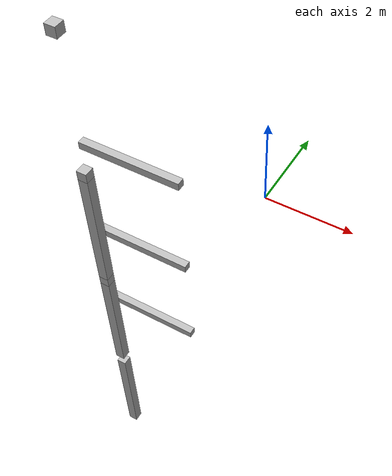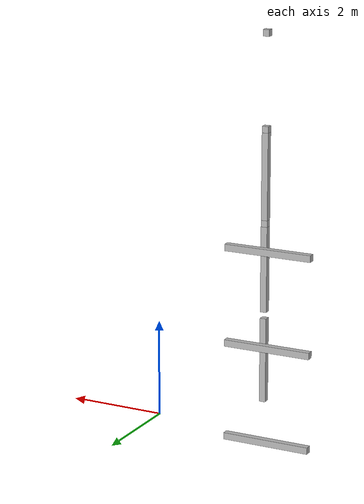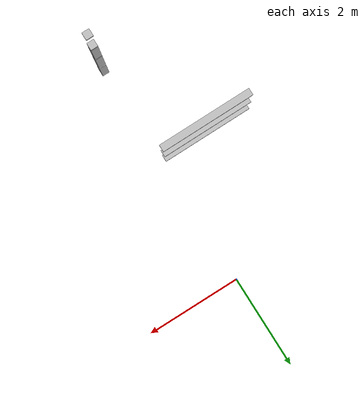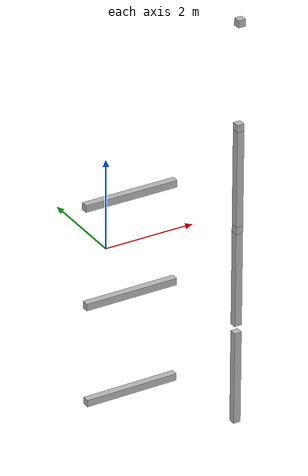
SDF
<sdf version="1.7">
 <world name="default">
  <model name="orthogonal_747_2.000.15_TS">
   <static>1</static>
   <link name="x_link_0_1_2">
    <inertial>
     <mass>1</mass>
     <inertia>
      <ixx>0.166667</ixx>
      <ixy>0</ixy>
      <ixz>0</ixz>
      <iyy>0.166667</iyy>
      <iyz>0</iyz>
      <izz>0.166667</izz>
     </inertia>
    </inertial>
    <pose>5.375 2.15 1.075 0 -0 0</pose>
    <visual name="visual_0">
     <laser_retro>204</laser_retro>
     <geometry><box><size>2 1e-06 0.15</size></box></geometry>
     <material>
      <script><name>Gazebo/Grey</name><uri>file://media/materials/scripts/gazebo.material</uri></script>
      <shader type="pixel"><normal_map>__default__</normal_map></shader>
      <ambient>0.678 0.498 0.659 1</ambient>
      <diffuse>0.7 0.7 0.7 1</diffuse>
      <specular>0.01 0.01 0.01 1</specular>
      <emissive>0 0 0 1</emissive>
     </material>
     <pose>0 -0.075 0 0 -0 0</pose>
     <transparency>1</transparency>
    </visual>
    <visual name="visual_1">
     <laser_retro>205</laser_retro>
     <geometry><box><size>2 1e-06 0.15</size></box></geometry>
     <material>
      <script><name>Gazebo/Grey</name><uri>file://media/materials/scripts/gazebo.material</uri></script>
      <shader type="pixel"><normal_map>__default__</normal_map></shader>
      <ambient>0.447 0.624 0.812 1</ambient>
      <diffuse>0.7 0.7 0.7 1</diffuse>
      <specular>0.01 0.01 0.01 1</specular>
      <emissive>0 0 0 1</emissive>
     </material>
     <pose>0 0.075 0 0 -0 0</pose>
     <transparency>1</transparency>
    </visual>
    <visual name="visual_2">
     <laser_retro>206</laser_retro>
     <geometry><box><size>2 0.15 1e-06</size></box></geometry>
     <material>
      <script><name>Gazebo/Grey</name><uri>file://media/materials/scripts/gazebo.material</uri></script>
      <shader type="pixel"><normal_map>__default__</normal_map></shader>
      <ambient>0.988 0.686 0.243 1</ambient>
      <diffuse>0.7 0.7 0.7 1</diffuse>
      <specular>0.01 0.01 0.01 1</specular>
      <emissive>0 0 0 1</emissive>
     </material>
     <pose>0 0 -0.075 0 -0 0</pose>
     <transparency>1</transparency>
    </visual>
    <visual name="visual_3">
     <laser_retro>207</laser_retro>
     <geometry><box><size>1e-06 0.15 0.15</size></box></geometry>
     <material>
      <script><name>Gazebo/Grey</name><uri>file://media/materials/scripts/gazebo.material</uri></script>
      <shader type="pixel"><normal_map>__default__</normal_map></shader>
      <ambient>0.988 0.914 0.31 1</ambient>
      <diffuse>0.7 0.7 0.7 1</diffuse>
      <specular>0.01 0.01 0.01 1</specular>
      <emissive>0 0 0 1</emissive>
     </material>
     <pose>1 0 0 0 -0 0</pose>
     <transparency>1</transparency>
    </visual>
    <visual name="visual_4">
     <laser_retro>208</laser_retro>
     <geometry><box><size>2 0.15 1e-06</size></box></geometry>
     <material>
      <script><name>Gazebo/Grey</name><uri>file://media/materials/scripts/gazebo.material</uri></script>
      <shader type="pixel"><normal_map>__default__</normal_map></shader>
      <ambient>0.937 0.161 0.161 1</ambient>
      <diffuse>0.7 0.7 0.7 1</diffuse>
      <specular>0.01 0.01 0.01 1</specular>
      <emissive>0 0 0 1</emissive>
     </material>
     <pose>0 0 0.075 0 -0 0</pose>
     <transparency>1</transparency>
    </visual>
    <visual name="visual_5">
     <laser_retro>209</laser_retro>
     <geometry><box><size>1e-06 0.15 0.15</size></box></geometry>
     <material>
      <script><name>Gazebo/Grey</name><uri>file://media/materials/scripts/gazebo.material</uri></script>
      <shader type="pixel"><normal_map>__default__</normal_map></shader>
      <ambient>0.541 0.886 0.204 1</ambient>
      <diffuse>0.7 0.7 0.7 1</diffuse>
      <specular>0.01 0.01 0.01 1</specular>
      <emissive>0 0 0 1</emissive>
     </material>
     <pose>-1 0 0 0 -0 0</pose>
     <transparency>1</transparency>
    </visual>
    <visual name="visual_texture">
     <geometry><box><size>1.9998 0.149985 0.149985</size></box></geometry>
     <material>
      <script>
       <uri>model://BASE_MODELS/simple_block_v2_textured/materials/scripts</uri>
       <uri>model://BASE_MODELS/simple_block_v2_textured/materials/textures</uri>
       <name>metal</name>
      </script>
     </material>
     <laser_retro>210</laser_retro>
    </visual>
    <collision name="collision">
     <geometry><box><size>2 0.15 0.15</size></box></geometry>
     <surface>
      <friction>
       <ode><mu>1</mu><mu2>1</mu2><fdir1>0 0 0</fdir1><slip1>0</slip1><slip2>0</slip2></ode>
       <torsional>
        <coefficient>1</coefficient>
        <patch_radius>0</patch_radius>
        <surface_radius>0</surface_radius>
        <use_patch_radius>1</use_patch_radius>
        <ode><slip>0</slip></ode>
       </torsional>
      </friction>
      <bounce><restitution_coefficient>0</restitution_coefficient><threshold>1e+06</threshold></bounce>
      <contact>
       <collide_without_contact>0</collide_without_contact>
       <collide_without_contact_bitmask>1</collide_without_contact_bitmask>
       <collide_bitmask>1</collide_bitmask>
       <ode>
        <soft_cfm>0</soft_cfm>
        <soft_erp>0.2</soft_erp>
        <kp>1e+13</kp>
        <kd>1</kd>
        <max_vel>0.01</max_vel>
        <min_depth>0</min_depth>
       </ode>
       <bullet>
        <split_impulse>1</split_impulse>
        <split_impulse_penetration_threshold>-0.01</split_impulse_penetration_threshold>
        <soft_cfm>0</soft_cfm>
        <soft_erp>0.2</soft_erp>
        <kp>1e+13</kp>
        <kd>1</kd>
       </bullet>
      </contact>
     </surface>
    </collision>
   </link>
   <link name="z_link_1_0_3">
    <inertial>
     <mass>1</mass>
     <inertia>
      <ixx>0.166667</ixx>
      <ixy>0</ixy>
      <ixz>0</ixz>
      <iyy>0.166667</iyy>
      <iyz>0</iyz>
      <izz>0.166667</izz>
     </inertia>
    </inertial>
    <pose>6.45 0 2.15 0 -0 0</pose>
    <visual name="visual_0">
     <laser_retro>855</laser_retro>
     <geometry><box><size>0.15 1e-06 2</size></box></geometry>
     <material>
      <script><name>Gazebo/Grey</name><uri>file://media/materials/scripts/gazebo.material</uri></script>
      <shader type="pixel"><normal_map>__default__</normal_map></shader>
      <ambient>0.678 0.498 0.659 1</ambient>
      <diffuse>0.7 0.7 0.7 1</diffuse>
      <specular>0.01 0.01 0.01 1</specular>
      <emissive>0 0 0 1</emissive>
     </material>
     <pose>0 -0.075 0 0 -0 0</pose>
     <transparency>1</transparency>
    </visual>
    <visual name="visual_1">
     <laser_retro>856</laser_retro>
     <geometry><box><size>0.15 1e-06 2</size></box></geometry>
     <material>
      <script><name>Gazebo/Grey</name><uri>file://media/materials/scripts/gazebo.material</uri></script>
      <shader type="pixel"><normal_map>__default__</normal_map></shader>
      <ambient>0.447 0.624 0.812 1</ambient>
      <diffuse>0.7 0.7 0.7 1</diffuse>
      <specular>0.01 0.01 0.01 1</specular>
      <emissive>0 0 0 1</emissive>
     </material>
     <pose>0 0.075 0 0 -0 0</pose>
     <transparency>1</transparency>
    </visual>
    <visual name="visual_2">
     <laser_retro>857</laser_retro>
     <geometry><box><size>0.15 0.15 1e-06</size></box></geometry>
     <material>
      <script><name>Gazebo/Grey</name><uri>file://media/materials/scripts/gazebo.material</uri></script>
      <shader type="pixel"><normal_map>__default__</normal_map></shader>
      <ambient>0.988 0.686 0.243 1</ambient>
      <diffuse>0.7 0.7 0.7 1</diffuse>
      <specular>0.01 0.01 0.01 1</specular>
      <emissive>0 0 0 1</emissive>
     </material>
     <pose>0 0 -1 0 -0 0</pose>
     <transparency>1</transparency>
    </visual>
    <visual name="visual_3">
     <laser_retro>858</laser_retro>
     <geometry><box><size>1e-06 0.15 2</size></box></geometry>
     <material>
      <script><name>Gazebo/Grey</name><uri>file://media/materials/scripts/gazebo.material</uri></script>
      <shader type="pixel"><normal_map>__default__</normal_map></shader>
      <ambient>0.988 0.914 0.31 1</ambient>
      <diffuse>0.7 0.7 0.7 1</diffuse>
      <specular>0.01 0.01 0.01 1</specular>
      <emissive>0 0 0 1</emissive>
     </material>
     <pose>0.075 0 0 0 -0 0</pose>
     <transparency>1</transparency>
    </visual>
    <visual name="visual_4">
     <laser_retro>859</laser_retro>
     <geometry><box><size>0.15 0.15 1e-06</size></box></geometry>
     <material>
      <script><name>Gazebo/Grey</name><uri>file://media/materials/scripts/gazebo.material</uri></script>
      <shader type="pixel"><normal_map>__default__</normal_map></shader>
      <ambient>0.937 0.161 0.161 1</ambient>
      <diffuse>0.7 0.7 0.7 1</diffuse>
      <specular>0.01 0.01 0.01 1</specular>
      <emissive>0 0 0 1</emissive>
     </material>
     <pose>0 0 1 0 -0 0</pose>
     <transparency>1</transparency>
    </visual>
    <visual name="visual_5">
     <laser_retro>860</laser_retro>
     <geometry><box><size>1e-06 0.15 2</size></box></geometry>
     <material>
      <script><name>Gazebo/Grey</name><uri>file://media/materials/scripts/gazebo.material</uri></script>
      <shader type="pixel"><normal_map>__default__</normal_map></shader>
      <ambient>0.541 0.886 0.204 1</ambient>
      <diffuse>0.7 0.7 0.7 1</diffuse>
      <specular>0.01 0.01 0.01 1</specular>
      <emissive>0 0 0 1</emissive>
     </material>
     <pose>-0.075 0 0 0 -0 0</pose>
     <transparency>1</transparency>
    </visual>
    <visual name="visual_texture">
     <geometry><box><size>0.149985 0.149985 1.9998</size></box></geometry>
     <material>
      <script>
       <uri>model://BASE_MODELS/simple_block_v2_textured/materials/scripts</uri>
       <uri>model://BASE_MODELS/simple_block_v2_textured/materials/textures</uri>
       <name>metal</name>
      </script>
     </material>
     <laser_retro>861</laser_retro>
    </visual>
    <collision name="collision">
     <geometry><box><size>0.15 0.15 2</size></box></geometry>
     <surface>
      <friction>
       <ode><mu>1</mu><mu2>1</mu2><fdir1>0 0 0</fdir1><slip1>0</slip1><slip2>0</slip2></ode>
       <torsional>
        <coefficient>1</coefficient>
        <patch_radius>0</patch_radius>
        <surface_radius>0</surface_radius>
        <use_patch_radius>1</use_patch_radius>
        <ode><slip>0</slip></ode>
       </torsional>
      </friction>
      <bounce><restitution_coefficient>0</restitution_coefficient><threshold>1e+06</threshold></bounce>
      <contact>
       <collide_without_contact>0</collide_without_contact>
       <collide_without_contact_bitmask>1</collide_without_contact_bitmask>
       <collide_bitmask>1</collide_bitmask>
       <ode>
        <soft_cfm>0</soft_cfm>
        <soft_erp>0.2</soft_erp>
        <kp>1e+13</kp>
        <kd>1</kd>
        <max_vel>0.01</max_vel>
        <min_depth>0</min_depth>
       </ode>
       <bullet>
        <split_impulse>1</split_impulse>
        <split_impulse_penetration_threshold>-0.01</split_impulse_penetration_threshold>
        <soft_cfm>0</soft_cfm>
        <soft_erp>0.2</soft_erp>
        <kp>1e+13</kp>
        <kd>1</kd>
       </bullet>
      </contact>
     </surface>
    </collision>
   </link>
   <link name="x_link_1_1_2">
    <inertial>
     <mass>1</mass>
     <inertia>
      <ixx>0.166667</ixx>
      <ixy>0</ixy>
      <ixz>0</ixz>
      <iyy>0.166667</iyy>
      <iyz>0</iyz>
      <izz>0.166667</izz>
     </inertia>
    </inertial>
    <pose>5.375 2.15 3.225 0 -0 0</pose>
    <visual name="visual_0">
     <laser_retro>1016</laser_retro>
     <geometry><box><size>2 1e-06 0.15</size></box></geometry>
     <material>
      <script><name>Gazebo/Grey</name><uri>file://media/materials/scripts/gazebo.material</uri></script>
      <shader type="pixel"><normal_map>__default__</normal_map></shader>
      <ambient>0.678 0.498 0.659 1</ambient>
      <diffuse>0.7 0.7 0.7 1</diffuse>
      <specular>0.01 0.01 0.01 1</specular>
      <emissive>0 0 0 1</emissive>
     </material>
     <pose>0 -0.075 0 0 -0 0</pose>
     <transparency>1</transparency>
    </visual>
    <visual name="visual_1">
     <laser_retro>1017</laser_retro>
     <geometry><box><size>2 1e-06 0.15</size></box></geometry>
     <material>
      <script><name>Gazebo/Grey</name><uri>file://media/materials/scripts/gazebo.material</uri></script>
      <shader type="pixel"><normal_map>__default__</normal_map></shader>
      <ambient>0.447 0.624 0.812 1</ambient>
      <diffuse>0.7 0.7 0.7 1</diffuse>
      <specular>0.01 0.01 0.01 1</specular>
      <emissive>0 0 0 1</emissive>
     </material>
     <pose>0 0.075 0 0 -0 0</pose>
     <transparency>1</transparency>
    </visual>
    <visual name="visual_2">
     <laser_retro>1018</laser_retro>
     <geometry><box><size>2 0.15 1e-06</size></box></geometry>
     <material>
      <script><name>Gazebo/Grey</name><uri>file://media/materials/scripts/gazebo.material</uri></script>
      <shader type="pixel"><normal_map>__default__</normal_map></shader>
      <ambient>0.988 0.686 0.243 1</ambient>
      <diffuse>0.7 0.7 0.7 1</diffuse>
      <specular>0.01 0.01 0.01 1</specular>
      <emissive>0 0 0 1</emissive>
     </material>
     <pose>0 0 -0.075 0 -0 0</pose>
     <transparency>1</transparency>
    </visual>
    <visual name="visual_3">
     <laser_retro>1019</laser_retro>
     <geometry><box><size>1e-06 0.15 0.15</size></box></geometry>
     <material>
      <script><name>Gazebo/Grey</name><uri>file://media/materials/scripts/gazebo.material</uri></script>
      <shader type="pixel"><normal_map>__default__</normal_map></shader>
      <ambient>0.988 0.914 0.31 1</ambient>
      <diffuse>0.7 0.7 0.7 1</diffuse>
      <specular>0.01 0.01 0.01 1</specular>
      <emissive>0 0 0 1</emissive>
     </material>
     <pose>1 0 0 0 -0 0</pose>
     <transparency>1</transparency>
    </visual>
    <visual name="visual_4">
     <laser_retro>1020</laser_retro>
     <geometry><box><size>2 0.15 1e-06</size></box></geometry>
     <material>
      <script><name>Gazebo/Grey</name><uri>file://media/materials/scripts/gazebo.material</uri></script>
      <shader type="pixel"><normal_map>__default__</normal_map></shader>
      <ambient>0.937 0.161 0.161 1</ambient>
      <diffuse>0.7 0.7 0.7 1</diffuse>
      <specular>0.01 0.01 0.01 1</specular>
      <emissive>0 0 0 1</emissive>
     </material>
     <pose>0 0 0.075 0 -0 0</pose>
     <transparency>1</transparency>
    </visual>
    <visual name="visual_5">
     <laser_retro>1021</laser_retro>
     <geometry><box><size>1e-06 0.15 0.15</size></box></geometry>
     <material>
      <script><name>Gazebo/Grey</name><uri>file://media/materials/scripts/gazebo.material</uri></script>
      <shader type="pixel"><normal_map>__default__</normal_map></shader>
      <ambient>0.541 0.886 0.204 1</ambient>
      <diffuse>0.7 0.7 0.7 1</diffuse>
      <specular>0.01 0.01 0.01 1</specular>
      <emissive>0 0 0 1</emissive>
     </material>
     <pose>-1 0 0 0 -0 0</pose>
     <transparency>1</transparency>
    </visual>
    <visual name="visual_texture">
     <geometry><box><size>1.9998 0.149985 0.149985</size></box></geometry>
     <material>
      <script>
       <uri>model://BASE_MODELS/simple_block_v2_textured/materials/scripts</uri>
       <uri>model://BASE_MODELS/simple_block_v2_textured/materials/textures</uri>
       <name>metal</name>
      </script>
     </material>
     <laser_retro>1022</laser_retro>
    </visual>
    <collision name="collision">
     <geometry><box><size>2 0.15 0.15</size></box></geometry>
     <surface>
      <friction>
       <ode><mu>1</mu><mu2>1</mu2><fdir1>0 0 0</fdir1><slip1>0</slip1><slip2>0</slip2></ode>
       <torsional>
        <coefficient>1</coefficient>
        <patch_radius>0</patch_radius>
        <surface_radius>0</surface_radius>
        <use_patch_radius>1</use_patch_radius>
        <ode><slip>0</slip></ode>
       </torsional>
      </friction>
      <bounce><restitution_coefficient>0</restitution_coefficient><threshold>1e+06</threshold></bounce>
      <contact>
       <collide_without_contact>0</collide_without_contact>
       <collide_without_contact_bitmask>1</collide_without_contact_bitmask>
       <collide_bitmask>1</collide_bitmask>
       <ode>
        <soft_cfm>0</soft_cfm>
        <soft_erp>0.2</soft_erp>
        <kp>1e+13</kp>
        <kd>1</kd>
        <max_vel>0.01</max_vel>
        <min_depth>0</min_depth>
       </ode>
       <bullet>
        <split_impulse>1</split_impulse>
        <split_impulse_penetration_threshold>-0.01</split_impulse_penetration_threshold>
        <soft_cfm>0</soft_cfm>
        <soft_erp>0.2</soft_erp>
        <kp>1e+13</kp>
        <kd>1</kd>
       </bullet>
      </contact>
     </surface>
    </collision>
   </link>
   <link name="u_link_2_0_3">
    <inertial>
     <mass>1</mass>
     <inertia>
      <ixx>0.166667</ixx>
      <ixy>0</ixy>
      <ixz>0</ixz>
      <iyy>0.166667</iyy>
      <iyz>0</iyz>
      <izz>0.166667</izz>
     </inertia>
    </inertial>
    <pose>6.45 0 5.375 0 -0 0</pose>
    <visual name="visual_0">
     <laser_retro>1751</laser_retro>
     <geometry><box><size>0.15 1e-06 0.15</size></box></geometry>
     <material>
      <script><name>Gazebo/Grey</name><uri>file://media/materials/scripts/gazebo.material</uri></script>
      <shader type="pixel"><normal_map>__default__</normal_map></shader>
      <ambient>0.678 0.498 0.659 1</ambient>
      <diffuse>0.7 0.7 0.7 1</diffuse>
      <specular>0.01 0.01 0.01 1</specular>
      <emissive>0 0 0 1</emissive>
     </material>
     <pose>0 -0.075 0 0 -0 0</pose>
     <transparency>1</transparency>
    </visual>
    <visual name="visual_1">
     <laser_retro>1752</laser_retro>
     <geometry><box><size>0.15 1e-06 0.15</size></box></geometry>
     <material>
      <script><name>Gazebo/Grey</name><uri>file://media/materials/scripts/gazebo.material</uri></script>
      <shader type="pixel"><normal_map>__default__</normal_map></shader>
      <ambient>0.447 0.624 0.812 1</ambient>
      <diffuse>0.7 0.7 0.7 1</diffuse>
      <specular>0.01 0.01 0.01 1</specular>
      <emissive>0 0 0 1</emissive>
     </material>
     <pose>0 0.075 0 0 -0 0</pose>
     <transparency>1</transparency>
    </visual>
    <visual name="visual_2">
     <laser_retro>1753</laser_retro>
     <geometry><box><size>0.15 0.15 1e-06</size></box></geometry>
     <material>
      <script><name>Gazebo/Grey</name><uri>file://media/materials/scripts/gazebo.material</uri></script>
      <shader type="pixel"><normal_map>__default__</normal_map></shader>
      <ambient>0.988 0.686 0.243 1</ambient>
      <diffuse>0.7 0.7 0.7 1</diffuse>
      <specular>0.01 0.01 0.01 1</specular>
      <emissive>0 0 0 1</emissive>
     </material>
     <pose>0 0 -0.075 0 -0 0</pose>
     <transparency>1</transparency>
    </visual>
    <visual name="visual_3">
     <laser_retro>1754</laser_retro>
     <geometry><box><size>1e-06 0.15 0.15</size></box></geometry>
     <material>
      <script><name>Gazebo/Grey</name><uri>file://media/materials/scripts/gazebo.material</uri></script>
      <shader type="pixel"><normal_map>__default__</normal_map></shader>
      <ambient>0.988 0.914 0.31 1</ambient>
      <diffuse>0.7 0.7 0.7 1</diffuse>
      <specular>0.01 0.01 0.01 1</specular>
      <emissive>0 0 0 1</emissive>
     </material>
     <pose>0.075 0 0 0 -0 0</pose>
     <transparency>1</transparency>
    </visual>
    <visual name="visual_4">
     <laser_retro>1755</laser_retro>
     <geometry><box><size>0.15 0.15 1e-06</size></box></geometry>
     <material>
      <script><name>Gazebo/Grey</name><uri>file://media/materials/scripts/gazebo.material</uri></script>
      <shader type="pixel"><normal_map>__default__</normal_map></shader>
      <ambient>0.937 0.161 0.161 1</ambient>
      <diffuse>0.7 0.7 0.7 1</diffuse>
      <specular>0.01 0.01 0.01 1</specular>
      <emissive>0 0 0 1</emissive>
     </material>
     <pose>0 0 0.075 0 -0 0</pose>
     <transparency>1</transparency>
    </visual>
    <visual name="visual_5">
     <laser_retro>1756</laser_retro>
     <geometry><box><size>1e-06 0.15 0.15</size></box></geometry>
     <material>
      <script><name>Gazebo/Grey</name><uri>file://media/materials/scripts/gazebo.material</uri></script>
      <shader type="pixel"><normal_map>__default__</normal_map></shader>
      <ambient>0.541 0.886 0.204 1</ambient>
      <diffuse>0.7 0.7 0.7 1</diffuse>
      <specular>0.01 0.01 0.01 1</specular>
      <emissive>0 0 0 1</emissive>
     </material>
     <pose>-0.075 0 0 0 -0 0</pose>
     <transparency>1</transparency>
    </visual>
    <visual name="visual_texture">
     <geometry><box><size>0.149985 0.149985 0.149985</size></box></geometry>
     <material>
      <script>
       <uri>model://BASE_MODELS/simple_block_v2_textured/materials/scripts</uri>
       <uri>model://BASE_MODELS/simple_block_v2_textured/materials/textures</uri>
       <name>metal</name>
      </script>
     </material>
     <laser_retro>1757</laser_retro>
    </visual>
    <collision name="collision">
     <geometry><box><size>0.15 0.15 0.15</size></box></geometry>
     <surface>
      <friction>
       <ode><mu>1</mu><mu2>1</mu2><fdir1>0 0 0</fdir1><slip1>0</slip1><slip2>0</slip2></ode>
       <torsional>
        <coefficient>1</coefficient>
        <patch_radius>0</patch_radius>
        <surface_radius>0</surface_radius>
        <use_patch_radius>1</use_patch_radius>
        <ode><slip>0</slip></ode>
       </torsional>
      </friction>
      <bounce><restitution_coefficient>0</restitution_coefficient><threshold>1e+06</threshold></bounce>
      <contact>
       <collide_without_contact>0</collide_without_contact>
       <collide_without_contact_bitmask>1</collide_without_contact_bitmask>
       <collide_bitmask>1</collide_bitmask>
       <ode>
        <soft_cfm>0</soft_cfm>
        <soft_erp>0.2</soft_erp>
        <kp>1e+13</kp>
        <kd>1</kd>
        <max_vel>0.01</max_vel>
        <min_depth>0</min_depth>
       </ode>
       <bullet>
        <split_impulse>1</split_impulse>
        <split_impulse_penetration_threshold>-0.01</split_impulse_penetration_threshold>
        <soft_cfm>0</soft_cfm>
        <soft_erp>0.2</soft_erp>
        <kp>1e+13</kp>
        <kd>1</kd>
       </bullet>
      </contact>
     </surface>
    </collision>
   </link>
   <link name="z_link_2_0_3">
    <inertial>
     <mass>1</mass>
     <inertia>
      <ixx>0.166667</ixx>
      <ixy>0</ixy>
      <ixz>0</ixz>
      <iyy>0.166667</iyy>
      <iyz>0</iyz>
      <izz>0.166667</izz>
     </inertia>
    </inertial>
    <pose>6.45 0 4.3 0 -0 0</pose>
    <visual name="visual_0">
     <laser_retro>1758</laser_retro>
     <geometry><box><size>0.15 1e-06 2</size></box></geometry>
     <material>
      <script><name>Gazebo/Grey</name><uri>file://media/materials/scripts/gazebo.material</uri></script>
      <shader type="pixel"><normal_map>__default__</normal_map></shader>
      <ambient>0.678 0.498 0.659 1</ambient>
      <diffuse>0.7 0.7 0.7 1</diffuse>
      <specular>0.01 0.01 0.01 1</specular>
      <emissive>0 0 0 1</emissive>
     </material>
     <pose>0 -0.075 0 0 -0 0</pose>
     <transparency>1</transparency>
    </visual>
    <visual name="visual_1">
     <laser_retro>1759</laser_retro>
     <geometry><box><size>0.15 1e-06 2</size></box></geometry>
     <material>
      <script><name>Gazebo/Grey</name><uri>file://media/materials/scripts/gazebo.material</uri></script>
      <shader type="pixel"><normal_map>__default__</normal_map></shader>
      <ambient>0.447 0.624 0.812 1</ambient>
      <diffuse>0.7 0.7 0.7 1</diffuse>
      <specular>0.01 0.01 0.01 1</specular>
      <emissive>0 0 0 1</emissive>
     </material>
     <pose>0 0.075 0 0 -0 0</pose>
     <transparency>1</transparency>
    </visual>
    <visual name="visual_2">
     <laser_retro>1760</laser_retro>
     <geometry><box><size>0.15 0.15 1e-06</size></box></geometry>
     <material>
      <script><name>Gazebo/Grey</name><uri>file://media/materials/scripts/gazebo.material</uri></script>
      <shader type="pixel"><normal_map>__default__</normal_map></shader>
      <ambient>0.988 0.686 0.243 1</ambient>
      <diffuse>0.7 0.7 0.7 1</diffuse>
      <specular>0.01 0.01 0.01 1</specular>
      <emissive>0 0 0 1</emissive>
     </material>
     <pose>0 0 -1 0 -0 0</pose>
     <transparency>1</transparency>
    </visual>
    <visual name="visual_3">
     <laser_retro>1761</laser_retro>
     <geometry><box><size>1e-06 0.15 2</size></box></geometry>
     <material>
      <script><name>Gazebo/Grey</name><uri>file://media/materials/scripts/gazebo.material</uri></script>
      <shader type="pixel"><normal_map>__default__</normal_map></shader>
      <ambient>0.988 0.914 0.31 1</ambient>
      <diffuse>0.7 0.7 0.7 1</diffuse>
      <specular>0.01 0.01 0.01 1</specular>
      <emissive>0 0 0 1</emissive>
     </material>
     <pose>0.075 0 0 0 -0 0</pose>
     <transparency>1</transparency>
    </visual>
    <visual name="visual_4">
     <laser_retro>1762</laser_retro>
     <geometry><box><size>0.15 0.15 1e-06</size></box></geometry>
     <material>
      <script><name>Gazebo/Grey</name><uri>file://media/materials/scripts/gazebo.material</uri></script>
      <shader type="pixel"><normal_map>__default__</normal_map></shader>
      <ambient>0.937 0.161 0.161 1</ambient>
      <diffuse>0.7 0.7 0.7 1</diffuse>
      <specular>0.01 0.01 0.01 1</specular>
      <emissive>0 0 0 1</emissive>
     </material>
     <pose>0 0 1 0 -0 0</pose>
     <transparency>1</transparency>
    </visual>
    <visual name="visual_5">
     <laser_retro>1763</laser_retro>
     <geometry><box><size>1e-06 0.15 2</size></box></geometry>
     <material>
      <script><name>Gazebo/Grey</name><uri>file://media/materials/scripts/gazebo.material</uri></script>
      <shader type="pixel"><normal_map>__default__</normal_map></shader>
      <ambient>0.541 0.886 0.204 1</ambient>
      <diffuse>0.7 0.7 0.7 1</diffuse>
      <specular>0.01 0.01 0.01 1</specular>
      <emissive>0 0 0 1</emissive>
     </material>
     <pose>-0.075 0 0 0 -0 0</pose>
     <transparency>1</transparency>
    </visual>
    <visual name="visual_texture">
     <geometry><box><size>0.149985 0.149985 1.9998</size></box></geometry>
     <material>
      <script>
       <uri>model://BASE_MODELS/simple_block_v2_textured/materials/scripts</uri>
       <uri>model://BASE_MODELS/simple_block_v2_textured/materials/textures</uri>
       <name>metal</name>
      </script>
     </material>
     <laser_retro>1764</laser_retro>
    </visual>
    <collision name="collision">
     <geometry><box><size>0.15 0.15 2</size></box></geometry>
     <surface>
      <friction>
       <ode><mu>1</mu><mu2>1</mu2><fdir1>0 0 0</fdir1><slip1>0</slip1><slip2>0</slip2></ode>
       <torsional>
        <coefficient>1</coefficient>
        <patch_radius>0</patch_radius>
        <surface_radius>0</surface_radius>
        <use_patch_radius>1</use_patch_radius>
        <ode><slip>0</slip></ode>
       </torsional>
      </friction>
      <bounce><restitution_coefficient>0</restitution_coefficient><threshold>1e+06</threshold></bounce>
      <contact>
       <collide_without_contact>0</collide_without_contact>
       <collide_without_contact_bitmask>1</collide_without_contact_bitmask>
       <collide_bitmask>1</collide_bitmask>
       <ode>
        <soft_cfm>0</soft_cfm>
        <soft_erp>0.2</soft_erp>
        <kp>1e+13</kp>
        <kd>1</kd>
        <max_vel>0.01</max_vel>
        <min_depth>0</min_depth>
       </ode>
       <bullet>
        <split_impulse>1</split_impulse>
        <split_impulse_penetration_threshold>-0.01</split_impulse_penetration_threshold>
        <soft_cfm>0</soft_cfm>
        <soft_erp>0.2</soft_erp>
        <kp>1e+13</kp>
        <kd>1</kd>
       </bullet>
      </contact>
     </surface>
    </collision>
   </link>
   <link name="x_link_2_1_2">
    <inertial>
     <mass>1</mass>
     <inertia>
      <ixx>0.166667</ixx>
      <ixy>0</ixy>
      <ixz>0</ixz>
      <iyy>0.166667</iyy>
      <iyz>0</iyz>
      <izz>0.166667</izz>
     </inertia>
    </inertial>
    <pose>5.375 2.15 5.375 0 -0 0</pose>
    <visual name="visual_0">
     <laser_retro>1919</laser_retro>
     <geometry><box><size>2 1e-06 0.15</size></box></geometry>
     <material>
      <script><name>Gazebo/Grey</name><uri>file://media/materials/scripts/gazebo.material</uri></script>
      <shader type="pixel"><normal_map>__default__</normal_map></shader>
      <ambient>0.678 0.498 0.659 1</ambient>
      <diffuse>0.7 0.7 0.7 1</diffuse>
      <specular>0.01 0.01 0.01 1</specular>
      <emissive>0 0 0 1</emissive>
     </material>
     <pose>0 -0.075 0 0 -0 0</pose>
     <transparency>1</transparency>
    </visual>
    <visual name="visual_1">
     <laser_retro>1920</laser_retro>
     <geometry><box><size>2 1e-06 0.15</size></box></geometry>
     <material>
      <script><name>Gazebo/Grey</name><uri>file://media/materials/scripts/gazebo.material</uri></script>
      <shader type="pixel"><normal_map>__default__</normal_map></shader>
      <ambient>0.447 0.624 0.812 1</ambient>
      <diffuse>0.7 0.7 0.7 1</diffuse>
      <specular>0.01 0.01 0.01 1</specular>
      <emissive>0 0 0 1</emissive>
     </material>
     <pose>0 0.075 0 0 -0 0</pose>
     <transparency>1</transparency>
    </visual>
    <visual name="visual_2">
     <laser_retro>1921</laser_retro>
     <geometry><box><size>2 0.15 1e-06</size></box></geometry>
     <material>
      <script><name>Gazebo/Grey</name><uri>file://media/materials/scripts/gazebo.material</uri></script>
      <shader type="pixel"><normal_map>__default__</normal_map></shader>
      <ambient>0.988 0.686 0.243 1</ambient>
      <diffuse>0.7 0.7 0.7 1</diffuse>
      <specular>0.01 0.01 0.01 1</specular>
      <emissive>0 0 0 1</emissive>
     </material>
     <pose>0 0 -0.075 0 -0 0</pose>
     <transparency>1</transparency>
    </visual>
    <visual name="visual_3">
     <laser_retro>1922</laser_retro>
     <geometry><box><size>1e-06 0.15 0.15</size></box></geometry>
     <material>
      <script><name>Gazebo/Grey</name><uri>file://media/materials/scripts/gazebo.material</uri></script>
      <shader type="pixel"><normal_map>__default__</normal_map></shader>
      <ambient>0.988 0.914 0.31 1</ambient>
      <diffuse>0.7 0.7 0.7 1</diffuse>
      <specular>0.01 0.01 0.01 1</specular>
      <emissive>0 0 0 1</emissive>
     </material>
     <pose>1 0 0 0 -0 0</pose>
     <transparency>1</transparency>
    </visual>
    <visual name="visual_4">
     <laser_retro>1923</laser_retro>
     <geometry><box><size>2 0.15 1e-06</size></box></geometry>
     <material>
      <script><name>Gazebo/Grey</name><uri>file://media/materials/scripts/gazebo.material</uri></script>
      <shader type="pixel"><normal_map>__default__</normal_map></shader>
      <ambient>0.937 0.161 0.161 1</ambient>
      <diffuse>0.7 0.7 0.7 1</diffuse>
      <specular>0.01 0.01 0.01 1</specular>
      <emissive>0 0 0 1</emissive>
     </material>
     <pose>0 0 0.075 0 -0 0</pose>
     <transparency>1</transparency>
    </visual>
    <visual name="visual_5">
     <laser_retro>1924</laser_retro>
     <geometry><box><size>1e-06 0.15 0.15</size></box></geometry>
     <material>
      <script><name>Gazebo/Grey</name><uri>file://media/materials/scripts/gazebo.material</uri></script>
      <shader type="pixel"><normal_map>__default__</normal_map></shader>
      <ambient>0.541 0.886 0.204 1</ambient>
      <diffuse>0.7 0.7 0.7 1</diffuse>
      <specular>0.01 0.01 0.01 1</specular>
      <emissive>0 0 0 1</emissive>
     </material>
     <pose>-1 0 0 0 -0 0</pose>
     <transparency>1</transparency>
    </visual>
    <visual name="visual_texture">
     <geometry><box><size>1.9998 0.149985 0.149985</size></box></geometry>
     <material>
      <script>
       <uri>model://BASE_MODELS/simple_block_v2_textured/materials/scripts</uri>
       <uri>model://BASE_MODELS/simple_block_v2_textured/materials/textures</uri>
       <name>metal</name>
      </script>
     </material>
     <laser_retro>1925</laser_retro>
    </visual>
    <collision name="collision">
     <geometry><box><size>2 0.15 0.15</size></box></geometry>
     <surface>
      <friction>
       <ode><mu>1</mu><mu2>1</mu2><fdir1>0 0 0</fdir1><slip1>0</slip1><slip2>0</slip2></ode>
       <torsional>
        <coefficient>1</coefficient>
        <patch_radius>0</patch_radius>
        <surface_radius>0</surface_radius>
        <use_patch_radius>1</use_patch_radius>
        <ode><slip>0</slip></ode>
       </torsional>
      </friction>
      <bounce><restitution_coefficient>0</restitution_coefficient><threshold>1e+06</threshold></bounce>
      <contact>
       <collide_without_contact>0</collide_without_contact>
       <collide_without_contact_bitmask>1</collide_without_contact_bitmask>
       <collide_bitmask>1</collide_bitmask>
       <ode>
        <soft_cfm>0</soft_cfm>
        <soft_erp>0.2</soft_erp>
        <kp>1e+13</kp>
        <kd>1</kd>
        <max_vel>0.01</max_vel>
        <min_depth>0</min_depth>
       </ode>
       <bullet>
        <split_impulse>1</split_impulse>
        <split_impulse_penetration_threshold>-0.01</split_impulse_penetration_threshold>
        <soft_cfm>0</soft_cfm>
        <soft_erp>0.2</soft_erp>
        <kp>1e+13</kp>
        <kd>1</kd>
       </bullet>
      </contact>
     </surface>
    </collision>
   </link>
   <link name="u_link_3_0_3">
    <inertial>
     <mass>1</mass>
     <inertia>
      <ixx>0.166667</ixx>
      <ixy>0</ixy>
      <ixz>0</ixz>
      <iyy>0.166667</iyy>
      <iyz>0</iyz>
      <izz>0.166667</izz>
     </inertia>
    </inertial>
    <pose>6.45 0 7.525 0 -0 0</pose>
    <visual name="visual_0">
     <laser_retro>2654</laser_retro>
     <geometry><box><size>0.15 1e-06 0.15</size></box></geometry>
     <material>
      <script><name>Gazebo/Grey</name><uri>file://media/materials/scripts/gazebo.material</uri></script>
      <shader type="pixel"><normal_map>__default__</normal_map></shader>
      <ambient>0.678 0.498 0.659 1</ambient>
      <diffuse>0.7 0.7 0.7 1</diffuse>
      <specular>0.01 0.01 0.01 1</specular>
      <emissive>0 0 0 1</emissive>
     </material>
     <pose>0 -0.075 0 0 -0 0</pose>
     <transparency>1</transparency>
    </visual>
    <visual name="visual_1">
     <laser_retro>2655</laser_retro>
     <geometry><box><size>0.15 1e-06 0.15</size></box></geometry>
     <material>
      <script><name>Gazebo/Grey</name><uri>file://media/materials/scripts/gazebo.material</uri></script>
      <shader type="pixel"><normal_map>__default__</normal_map></shader>
      <ambient>0.447 0.624 0.812 1</ambient>
      <diffuse>0.7 0.7 0.7 1</diffuse>
      <specular>0.01 0.01 0.01 1</specular>
      <emissive>0 0 0 1</emissive>
     </material>
     <pose>0 0.075 0 0 -0 0</pose>
     <transparency>1</transparency>
    </visual>
    <visual name="visual_2">
     <laser_retro>2656</laser_retro>
     <geometry><box><size>0.15 0.15 1e-06</size></box></geometry>
     <material>
      <script><name>Gazebo/Grey</name><uri>file://media/materials/scripts/gazebo.material</uri></script>
      <shader type="pixel"><normal_map>__default__</normal_map></shader>
      <ambient>0.988 0.686 0.243 1</ambient>
      <diffuse>0.7 0.7 0.7 1</diffuse>
      <specular>0.01 0.01 0.01 1</specular>
      <emissive>0 0 0 1</emissive>
     </material>
     <pose>0 0 -0.075 0 -0 0</pose>
     <transparency>1</transparency>
    </visual>
    <visual name="visual_3">
     <laser_retro>2657</laser_retro>
     <geometry><box><size>1e-06 0.15 0.15</size></box></geometry>
     <material>
      <script><name>Gazebo/Grey</name><uri>file://media/materials/scripts/gazebo.material</uri></script>
      <shader type="pixel"><normal_map>__default__</normal_map></shader>
      <ambient>0.988 0.914 0.31 1</ambient>
      <diffuse>0.7 0.7 0.7 1</diffuse>
      <specular>0.01 0.01 0.01 1</specular>
      <emissive>0 0 0 1</emissive>
     </material>
     <pose>0.075 0 0 0 -0 0</pose>
     <transparency>1</transparency>
    </visual>
    <visual name="visual_4">
     <laser_retro>2658</laser_retro>
     <geometry><box><size>0.15 0.15 1e-06</size></box></geometry>
     <material>
      <script><name>Gazebo/Grey</name><uri>file://media/materials/scripts/gazebo.material</uri></script>
      <shader type="pixel"><normal_map>__default__</normal_map></shader>
      <ambient>0.937 0.161 0.161 1</ambient>
      <diffuse>0.7 0.7 0.7 1</diffuse>
      <specular>0.01 0.01 0.01 1</specular>
      <emissive>0 0 0 1</emissive>
     </material>
     <pose>0 0 0.075 0 -0 0</pose>
     <transparency>1</transparency>
    </visual>
    <visual name="visual_5">
     <laser_retro>2659</laser_retro>
     <geometry><box><size>1e-06 0.15 0.15</size></box></geometry>
     <material>
      <script><name>Gazebo/Grey</name><uri>file://media/materials/scripts/gazebo.material</uri></script>
      <shader type="pixel"><normal_map>__default__</normal_map></shader>
      <ambient>0.541 0.886 0.204 1</ambient>
      <diffuse>0.7 0.7 0.7 1</diffuse>
      <specular>0.01 0.01 0.01 1</specular>
      <emissive>0 0 0 1</emissive>
     </material>
     <pose>-0.075 0 0 0 -0 0</pose>
     <transparency>1</transparency>
    </visual>
    <visual name="visual_texture">
     <geometry><box><size>0.149985 0.149985 0.149985</size></box></geometry>
     <material>
      <script>
       <uri>model://BASE_MODELS/simple_block_v2_textured/materials/scripts</uri>
       <uri>model://BASE_MODELS/simple_block_v2_textured/materials/textures</uri>
       <name>metal</name>
      </script>
     </material>
     <laser_retro>2660</laser_retro>
    </visual>
    <collision name="collision">
     <geometry><box><size>0.15 0.15 0.15</size></box></geometry>
     <surface>
      <friction>
       <ode><mu>1</mu><mu2>1</mu2><fdir1>0 0 0</fdir1><slip1>0</slip1><slip2>0</slip2></ode>
       <torsional>
        <coefficient>1</coefficient>
        <patch_radius>0</patch_radius>
        <surface_radius>0</surface_radius>
        <use_patch_radius>1</use_patch_radius>
        <ode><slip>0</slip></ode>
       </torsional>
      </friction>
      <bounce><restitution_coefficient>0</restitution_coefficient><threshold>1e+06</threshold></bounce>
      <contact>
       <collide_without_contact>0</collide_without_contact>
       <collide_without_contact_bitmask>1</collide_without_contact_bitmask>
       <collide_bitmask>1</collide_bitmask>
       <ode>
        <soft_cfm>0</soft_cfm>
        <soft_erp>0.2</soft_erp>
        <kp>1e+13</kp>
        <kd>1</kd>
        <max_vel>0.01</max_vel>
        <min_depth>0</min_depth>
       </ode>
       <bullet>
        <split_impulse>1</split_impulse>
        <split_impulse_penetration_threshold>-0.01</split_impulse_penetration_threshold>
        <soft_cfm>0</soft_cfm>
        <soft_erp>0.2</soft_erp>
        <kp>1e+13</kp>
        <kd>1</kd>
       </bullet>
      </contact>
     </surface>
    </collision>
   </link>
   <link name="z_link_3_0_3">
    <inertial>
     <mass>1</mass>
     <inertia>
      <ixx>0.166667</ixx>
      <ixy>0</ixy>
      <ixz>0</ixz>
      <iyy>0.166667</iyy>
      <iyz>0</iyz>
      <izz>0.166667</izz>
     </inertia>
    </inertial>
    <pose>6.45 0 6.45 0 -0 0</pose>
    <visual name="visual_0">
     <laser_retro>2661</laser_retro>
     <geometry><box><size>0.15 1e-06 2</size></box></geometry>
     <material>
      <script><name>Gazebo/Grey</name><uri>file://media/materials/scripts/gazebo.material</uri></script>
      <shader type="pixel"><normal_map>__default__</normal_map></shader>
      <ambient>0.678 0.498 0.659 1</ambient>
      <diffuse>0.7 0.7 0.7 1</diffuse>
      <specular>0.01 0.01 0.01 1</specular>
      <emissive>0 0 0 1</emissive>
     </material>
     <pose>0 -0.075 0 0 -0 0</pose>
     <transparency>1</transparency>
    </visual>
    <visual name="visual_1">
     <laser_retro>2662</laser_retro>
     <geometry><box><size>0.15 1e-06 2</size></box></geometry>
     <material>
      <script><name>Gazebo/Grey</name><uri>file://media/materials/scripts/gazebo.material</uri></script>
      <shader type="pixel"><normal_map>__default__</normal_map></shader>
      <ambient>0.447 0.624 0.812 1</ambient>
      <diffuse>0.7 0.7 0.7 1</diffuse>
      <specular>0.01 0.01 0.01 1</specular>
      <emissive>0 0 0 1</emissive>
     </material>
     <pose>0 0.075 0 0 -0 0</pose>
     <transparency>1</transparency>
    </visual>
    <visual name="visual_2">
     <laser_retro>2663</laser_retro>
     <geometry><box><size>0.15 0.15 1e-06</size></box></geometry>
     <material>
      <script><name>Gazebo/Grey</name><uri>file://media/materials/scripts/gazebo.material</uri></script>
      <shader type="pixel"><normal_map>__default__</normal_map></shader>
      <ambient>0.988 0.686 0.243 1</ambient>
      <diffuse>0.7 0.7 0.7 1</diffuse>
      <specular>0.01 0.01 0.01 1</specular>
      <emissive>0 0 0 1</emissive>
     </material>
     <pose>0 0 -1 0 -0 0</pose>
     <transparency>1</transparency>
    </visual>
    <visual name="visual_3">
     <laser_retro>2664</laser_retro>
     <geometry><box><size>1e-06 0.15 2</size></box></geometry>
     <material>
      <script><name>Gazebo/Grey</name><uri>file://media/materials/scripts/gazebo.material</uri></script>
      <shader type="pixel"><normal_map>__default__</normal_map></shader>
      <ambient>0.988 0.914 0.31 1</ambient>
      <diffuse>0.7 0.7 0.7 1</diffuse>
      <specular>0.01 0.01 0.01 1</specular>
      <emissive>0 0 0 1</emissive>
     </material>
     <pose>0.075 0 0 0 -0 0</pose>
     <transparency>1</transparency>
    </visual>
    <visual name="visual_4">
     <laser_retro>2665</laser_retro>
     <geometry><box><size>0.15 0.15 1e-06</size></box></geometry>
     <material>
      <script><name>Gazebo/Grey</name><uri>file://media/materials/scripts/gazebo.material</uri></script>
      <shader type="pixel"><normal_map>__default__</normal_map></shader>
      <ambient>0.937 0.161 0.161 1</ambient>
      <diffuse>0.7 0.7 0.7 1</diffuse>
      <specular>0.01 0.01 0.01 1</specular>
      <emissive>0 0 0 1</emissive>
     </material>
     <pose>0 0 1 0 -0 0</pose>
     <transparency>1</transparency>
    </visual>
    <visual name="visual_5">
     <laser_retro>2666</laser_retro>
     <geometry><box><size>1e-06 0.15 2</size></box></geometry>
     <material>
      <script><name>Gazebo/Grey</name><uri>file://media/materials/scripts/gazebo.material</uri></script>
      <shader type="pixel"><normal_map>__default__</normal_map></shader>
      <ambient>0.541 0.886 0.204 1</ambient>
      <diffuse>0.7 0.7 0.7 1</diffuse>
      <specular>0.01 0.01 0.01 1</specular>
      <emissive>0 0 0 1</emissive>
     </material>
     <pose>-0.075 0 0 0 -0 0</pose>
     <transparency>1</transparency>
    </visual>
    <visual name="visual_texture">
     <geometry><box><size>0.149985 0.149985 1.9998</size></box></geometry>
     <material>
      <script>
       <uri>model://BASE_MODELS/simple_block_v2_textured/materials/scripts</uri>
       <uri>model://BASE_MODELS/simple_block_v2_textured/materials/textures</uri>
       <name>metal</name>
      </script>
     </material>
     <laser_retro>2667</laser_retro>
    </visual>
    <collision name="collision">
     <geometry><box><size>0.15 0.15 2</size></box></geometry>
     <surface>
      <friction>
       <ode><mu>1</mu><mu2>1</mu2><fdir1>0 0 0</fdir1><slip1>0</slip1><slip2>0</slip2></ode>
       <torsional>
        <coefficient>1</coefficient>
        <patch_radius>0</patch_radius>
        <surface_radius>0</surface_radius>
        <use_patch_radius>1</use_patch_radius>
        <ode><slip>0</slip></ode>
       </torsional>
      </friction>
      <bounce><restitution_coefficient>0</restitution_coefficient><threshold>1e+06</threshold></bounce>
      <contact>
       <collide_without_contact>0</collide_without_contact>
       <collide_without_contact_bitmask>1</collide_without_contact_bitmask>
       <collide_bitmask>1</collide_bitmask>
       <ode>
        <soft_cfm>0</soft_cfm>
        <soft_erp>0.2</soft_erp>
        <kp>1e+13</kp>
        <kd>1</kd>
        <max_vel>0.01</max_vel>
        <min_depth>0</min_depth>
       </ode>
       <bullet>
        <split_impulse>1</split_impulse>
        <split_impulse_penetration_threshold>-0.01</split_impulse_penetration_threshold>
        <soft_cfm>0</soft_cfm>
        <soft_erp>0.2</soft_erp>
        <kp>1e+13</kp>
        <kd>1</kd>
       </bullet>
      </contact>
     </surface>
    </collision>
   </link>
   <link name="u_link_4_0_3">
    <inertial>
     <mass>1</mass>
     <inertia>
      <ixx>0.166667</ixx>
      <ixy>0</ixy>
      <ixz>0</ixz>
      <iyy>0.166667</iyy>
      <iyz>0</iyz>
      <izz>0.166667</izz>
     </inertia>
    </inertial>
    <pose>6.45 0 9.675 0 -0 0</pose>
    <visual name="visual_0">
     <laser_retro>3557</laser_retro>
     <geometry><box><size>0.15 1e-06 0.15</size></box></geometry>
     <material>
      <script><name>Gazebo/Grey</name><uri>file://media/materials/scripts/gazebo.material</uri></script>
      <shader type="pixel"><normal_map>__default__</normal_map></shader>
      <ambient>0.678 0.498 0.659 1</ambient>
      <diffuse>0.7 0.7 0.7 1</diffuse>
      <specular>0.01 0.01 0.01 1</specular>
      <emissive>0 0 0 1</emissive>
     </material>
     <pose>0 -0.075 0 0 -0 0</pose>
     <transparency>1</transparency>
    </visual>
    <visual name="visual_1">
     <laser_retro>3558</laser_retro>
     <geometry><box><size>0.15 1e-06 0.15</size></box></geometry>
     <material>
      <script><name>Gazebo/Grey</name><uri>file://media/materials/scripts/gazebo.material</uri></script>
      <shader type="pixel"><normal_map>__default__</normal_map></shader>
      <ambient>0.447 0.624 0.812 1</ambient>
      <diffuse>0.7 0.7 0.7 1</diffuse>
      <specular>0.01 0.01 0.01 1</specular>
      <emissive>0 0 0 1</emissive>
     </material>
     <pose>0 0.075 0 0 -0 0</pose>
     <transparency>1</transparency>
    </visual>
    <visual name="visual_2">
     <laser_retro>3559</laser_retro>
     <geometry><box><size>0.15 0.15 1e-06</size></box></geometry>
     <material>
      <script><name>Gazebo/Grey</name><uri>file://media/materials/scripts/gazebo.material</uri></script>
      <shader type="pixel"><normal_map>__default__</normal_map></shader>
      <ambient>0.988 0.686 0.243 1</ambient>
      <diffuse>0.7 0.7 0.7 1</diffuse>
      <specular>0.01 0.01 0.01 1</specular>
      <emissive>0 0 0 1</emissive>
     </material>
     <pose>0 0 -0.075 0 -0 0</pose>
     <transparency>1</transparency>
    </visual>
    <visual name="visual_3">
     <laser_retro>3560</laser_retro>
     <geometry><box><size>1e-06 0.15 0.15</size></box></geometry>
     <material>
      <script><name>Gazebo/Grey</name><uri>file://media/materials/scripts/gazebo.material</uri></script>
      <shader type="pixel"><normal_map>__default__</normal_map></shader>
      <ambient>0.988 0.914 0.31 1</ambient>
      <diffuse>0.7 0.7 0.7 1</diffuse>
      <specular>0.01 0.01 0.01 1</specular>
      <emissive>0 0 0 1</emissive>
     </material>
     <pose>0.075 0 0 0 -0 0</pose>
     <transparency>1</transparency>
    </visual>
    <visual name="visual_4">
     <laser_retro>3561</laser_retro>
     <geometry><box><size>0.15 0.15 1e-06</size></box></geometry>
     <material>
      <script><name>Gazebo/Grey</name><uri>file://media/materials/scripts/gazebo.material</uri></script>
      <shader type="pixel"><normal_map>__default__</normal_map></shader>
      <ambient>0.937 0.161 0.161 1</ambient>
      <diffuse>0.7 0.7 0.7 1</diffuse>
      <specular>0.01 0.01 0.01 1</specular>
      <emissive>0 0 0 1</emissive>
     </material>
     <pose>0 0 0.075 0 -0 0</pose>
     <transparency>1</transparency>
    </visual>
    <visual name="visual_5">
     <laser_retro>3562</laser_retro>
     <geometry><box><size>1e-06 0.15 0.15</size></box></geometry>
     <material>
      <script><name>Gazebo/Grey</name><uri>file://media/materials/scripts/gazebo.material</uri></script>
      <shader type="pixel"><normal_map>__default__</normal_map></shader>
      <ambient>0.541 0.886 0.204 1</ambient>
      <diffuse>0.7 0.7 0.7 1</diffuse>
      <specular>0.01 0.01 0.01 1</specular>
      <emissive>0 0 0 1</emissive>
     </material>
     <pose>-0.075 0 0 0 -0 0</pose>
     <transparency>1</transparency>
    </visual>
    <visual name="visual_texture">
     <geometry><box><size>0.149985 0.149985 0.149985</size></box></geometry>
     <material>
      <script>
       <uri>model://BASE_MODELS/simple_block_v2_textured/materials/scripts</uri>
       <uri>model://BASE_MODELS/simple_block_v2_textured/materials/textures</uri>
       <name>metal</name>
      </script>
     </material>
     <laser_retro>3563</laser_retro>
    </visual>
    <collision name="collision">
     <geometry><box><size>0.15 0.15 0.15</size></box></geometry>
     <surface>
      <friction>
       <ode><mu>1</mu><mu2>1</mu2><fdir1>0 0 0</fdir1><slip1>0</slip1><slip2>0</slip2></ode>
       <torsional>
        <coefficient>1</coefficient>
        <patch_radius>0</patch_radius>
        <surface_radius>0</surface_radius>
        <use_patch_radius>1</use_patch_radius>
        <ode><slip>0</slip></ode>
       </torsional>
      </friction>
      <bounce><restitution_coefficient>0</restitution_coefficient><threshold>1e+06</threshold></bounce>
      <contact>
       <collide_without_contact>0</collide_without_contact>
       <collide_without_contact_bitmask>1</collide_without_contact_bitmask>
       <collide_bitmask>1</collide_bitmask>
       <ode>
        <soft_cfm>0</soft_cfm>
        <soft_erp>0.2</soft_erp>
        <kp>1e+13</kp>
        <kd>1</kd>
        <max_vel>0.01</max_vel>
        <min_depth>0</min_depth>
       </ode>
       <bullet>
        <split_impulse>1</split_impulse>
        <split_impulse_penetration_threshold>-0.01</split_impulse_penetration_threshold>
        <soft_cfm>0</soft_cfm>
        <soft_erp>0.2</soft_erp>
        <kp>1e+13</kp>
        <kd>1</kd>
       </bullet>
      </contact>
     </surface>
    </collision>
   </link>
   <pose>-6.47624 -5 -2.5 0 -0 0</pose>
  </model>
 </world>
</sdf>
